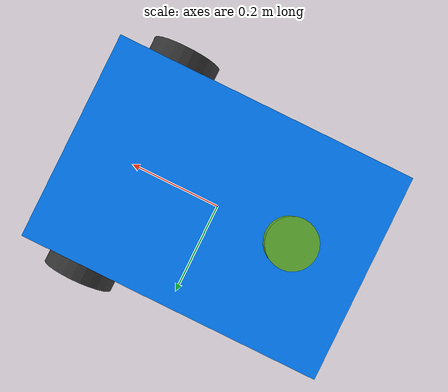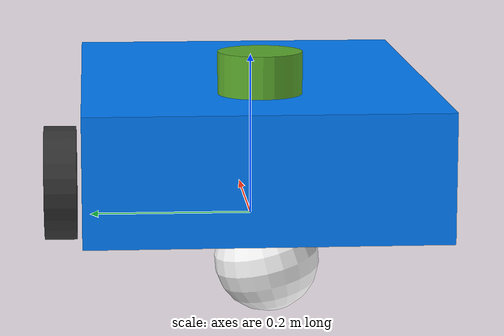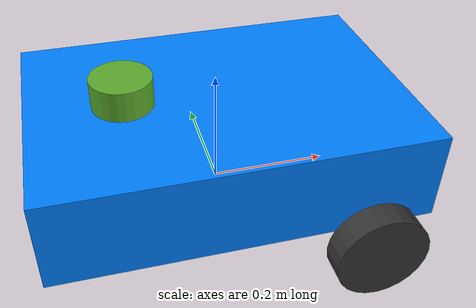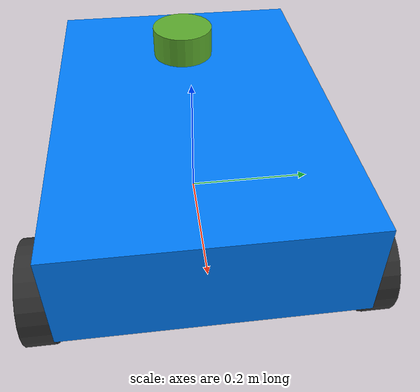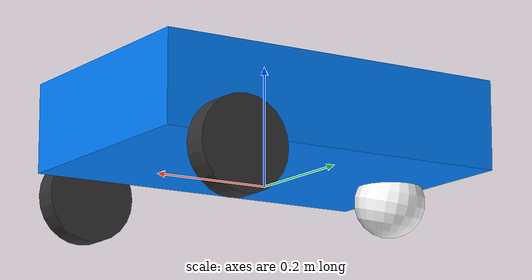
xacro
<?xml version="1.0" ?>
<robot xmlns:xacro="http://www.ros.org/wiki/xacro" name="dd_robot">
  <!-- Properties -->
  <xacro:property name="wheel_radius" value="0.0762"/>
  <xacro:property name="wheel_width" value="0.04318"/>
  <xacro:property name="base_length" value="0.6096"/>
  <xacro:property name="base_width" value="0.4191"/>
  <xacro:property name="base_height" value="0.15"/>
  <xacro:property name="wheel_separation" value="0.48"/>
  <xacro:property name="wheel_diameter" value="0.1524"/>

  <!-- Base Link -->
  <link name="base_link">
    <visual>
      <origin rpy="0 0 0" xyz="0 0 0.1"/>
      <geometry>
        <box size="${base_length} ${base_width} ${base_height}"/>
      </geometry>
      <material name="blue">
        <color rgba="0 0.5 1 1"/>
      </material>
    </visual>
    <collision>
      <origin rpy="0 0 0" xyz="0 0 1"/>
      <geometry>
        <box size="${base_length} ${base_width} ${base_height}"/>
      </geometry>
    </collision>
    <inertial>
      <mass value="5"/>
      <inertia ixx="0.13" ixy="0.0" ixz="0.0" iyy="0.21" iyz="0.0" izz="0.13"/>
    </inertial>
  </link>

  <!-- Right Wheel -->
  <link name="right_wheel">
    <visual>
      <origin rpy="1.570795 0 0" xyz="0 0 0"/>
      <geometry>
        <cylinder length="0.04318" radius="0.0762"/>
      </geometry>
      <material name="darkgray">
        <color rgba=".2 .2 .2 1"/>
      </material>
    </visual>
    <collision>
      <origin rpy="1.570795 0 0" xyz="0 0 0"/>
      <geometry>
        <cylinder length="0.04318" radius="0.0762"/>
      </geometry>
    </collision>
    <inertial>
      <mass value="0.5"/>
      <inertia ixx="0.01" ixy="0.0" ixz="0.0" iyy="0.005" iyz="0.0" izz="0.005"/>
    </inertial>
  </link>

  <!-- Right Wheel Joint -->
  <joint name="joint_right_wheel" type="continuous">
    <parent link="base_link"/>
    <child link="right_wheel"/>
    <origin rpy="0 0 0" xyz="0.2 0.24 0"/>
    <axis xyz="0 1 0"/>
  </joint>

  <!-- Left Wheel -->
  <link name="left_wheel">
    <visual>
      <origin rpy="1.570795 0 0" xyz="0 0 0"/>
      <geometry>
        <cylinder length="0.04318" radius="0.0762"/>
      </geometry>
      <material name="darkgray">
        <color rgba=".2 .2 .2 1"/>
      </material>
    </visual>
    <collision>
      <origin rpy="1.570795 0 0" xyz="0 0 0"/>
      <geometry>
        <cylinder length="0.04318" radius="0.0762"/>
      </geometry>
    </collision>
    <inertial>
      <mass value="0.5"/>
      <inertia ixx="0.01" ixy="0.0" ixz="0.0" iyy="0.005" iyz="0.0" izz="0.005"/>
    </inertial>
  </link>

  <!-- Left Wheel Joint -->
  <joint name="joint_left_wheel" type="continuous">
    <parent link="base_link"/>
    <child link="left_wheel"/>
    <origin rpy="0 0 0" xyz="0.2 -0.24 0"/>
    <axis xyz="0 1 0"/>
  </joint>

  <!-- Caster Wheel -->
  <link name="caster">
    <visual>
      <origin xyz="0.0 0.0 0.0" rpy="-0.25 0.0 0.25"/>

      <geometry>
        <sphere radius="0.06"/>
      </geometry>
      <material name="white">
        <color rgba="1 1 1 1"/>
      </material>
    </visual>
    <collision>
      <origin xyz="0.0 0.0 0.0" rpy="-0.25 0.0 0.25s"/>

      <geometry>
        <sphere radius="0.06"/>
      </geometry>
    </collision>
  </link>
  <joint name="caster_joint" type="fixed">
    <origin rpy="0 0 0" xyz="-0.25 0.0 0.0"/>
    <!-- Đặt gần mặt đất để tránh nghiêng -->
    <parent link="base_link"/>
    <child link="caster"/>
  </joint>

  <!-- LiDAR -->
  <link name="laser">
    <visual>
      <geometry>
        <cylinder length="0.05" radius="0.05"/>
      </geometry>
      <material name="grass">
        <color rgba="0.3607843137254902 0.6745098039215687 0.17647058823529413 1.0"/>
      </material>
    </visual>
  </link>
  <joint name="laser_joint" type="fixed">
    <origin rpy="0 0 0" xyz="-0.15 0 0.2"/>
    <!-- Đặt về phía trước và cao hơn một chút -->
    <parent link="base_link"/>
    <child link="laser"/>
  </joint>

  <!-- Cấu hình Plugin LiDAR -->
  <gazebo reference="laser">
    <sensor type="ray" name="head_hokuyo_sensor">
      <pose>0 0 0 0 0 0</pose>
      <visualize>true</visualize>
      <update_rate>20</update_rate> <!-- Giảm tốc độ quét để hiệu suất tốt hơn -->
      <ray>
        <scan>
          <horizontal>
            <samples>360</samples> <!-- Giảm số lượng mẫu để quét phía trước -->
            <resolution>1</resolution>
            <min_angle>-1.57</min_angle>
            <max_angle>1.57</max_angle>
          </horizontal>
        </scan>
        <range>
          <min>0.1</min>
          <max>10.0</max> <!-- Giảm phạm vi để tránh quét quá xa -->
        </range>
        <noise>
          <type>gaussian</type>
          <mean>0.0</mean>
          <stddev>0.005</stddev> <!-- Giảm nhiễu để có dữ liệu quét rõ ràng hơn -->
        </noise>
      </ray>
      <plugin filename="libgazebo_ros_ray_sensor.so" name="gazebo_ros_head_hokuyo_controller">
        <ros>
          <namespace>/dd_robot</namespace>
          <remapping>cmd_vel:=cmd_vel</remapping>
        </ros>
        <topicName>/laser/scan</topicName>
        <frameName>laser</frameName>
        <output_type>sensor_msgs/LaserScan</output_type> <!-- Sử dụng LaserScan cho quét 2D phía trước -->
      </plugin>
    </sensor>
  </gazebo>

  <!-- Gazebo Plugin Diff Drive -->
  <gazebo>
    <plugin filename="libgazebo_ros_diff_drive.so" name="diff_drive_controller">
      <ros>
        <namespace>/dd_robot</namespace>
        <remapping>cmd_vel:=cmd_vel</remapping>
      </ros>
      <update_rate>50</update_rate>

      <!-- wheels -->
      <left_joint>joint_left_wheel</left_joint>
      <right_joint>joint_right_wheel</right_joint>

      <!-- kinematics -->
      <wheel_separation>0.48</wheel_separation>
      <wheel_diameter>0.1524</wheel_diameter>

      <!-- limits -->
      <max_wheel_torque>20</max_wheel_torque>
      <max_wheel_acceleration>1.0</max_wheel_acceleration>

      <command_topic>cmd_vel</command_topic>

      <!-- output -->
      <publish_odom>true</publish_odom>
      <publish_odom_tf>true</publish_odom_tf>
      <publish_wheel_tf>true</publish_wheel_tf>

      <odometry_topic>odom</odometry_topic>
      <odometry_frame>odom</odometry_frame>
      <robot_base_frame>base_footprint</robot_base_frame>
    </plugin>
  </gazebo>

</robot>
